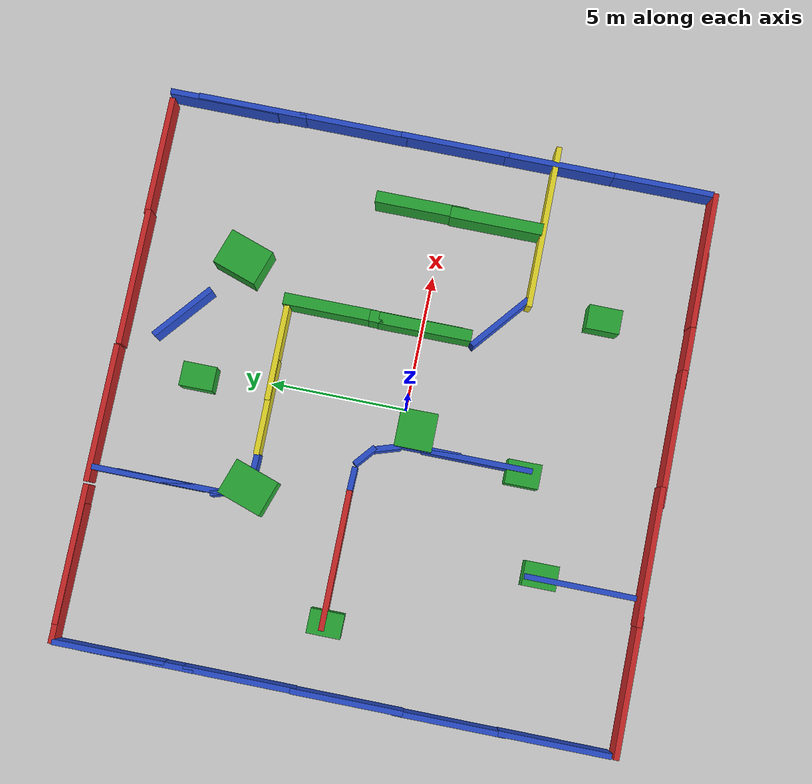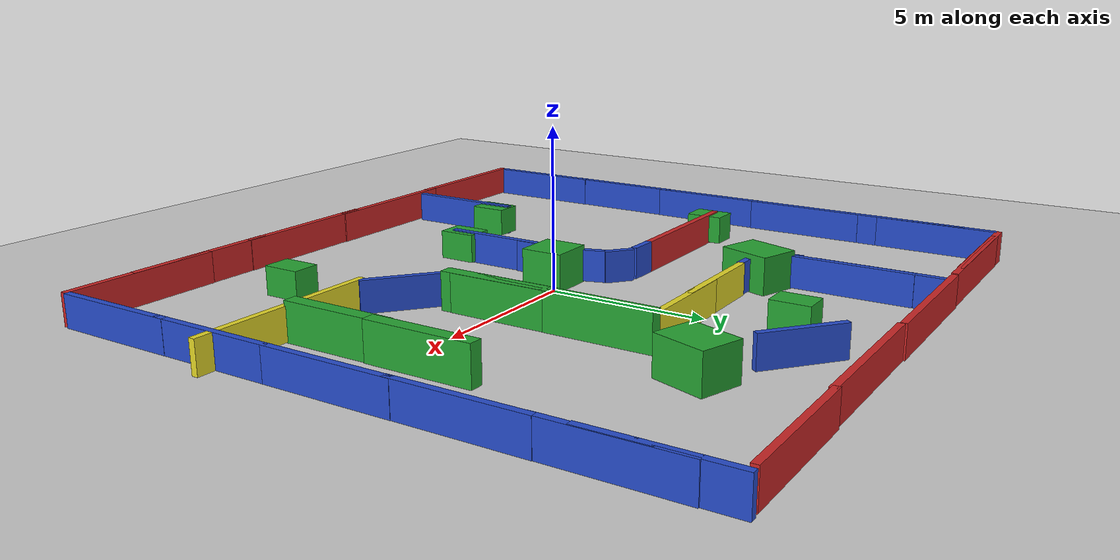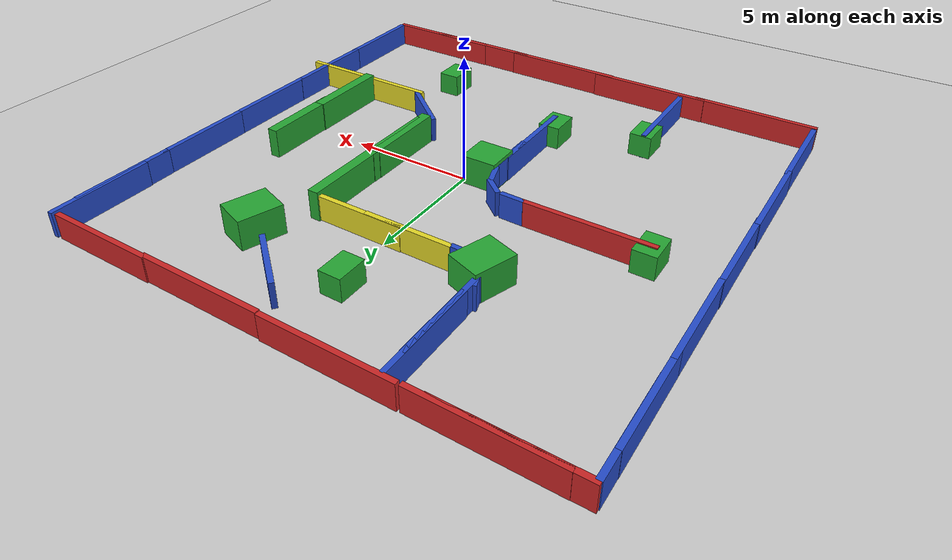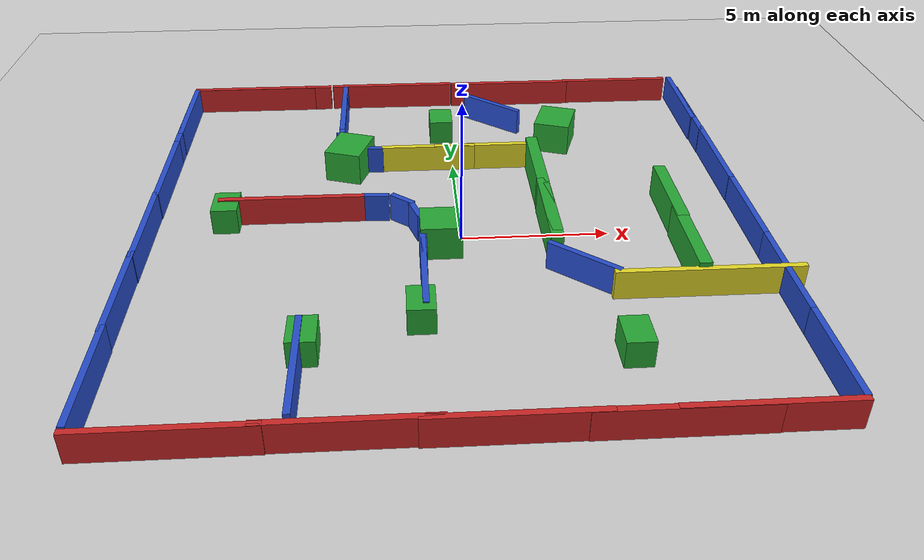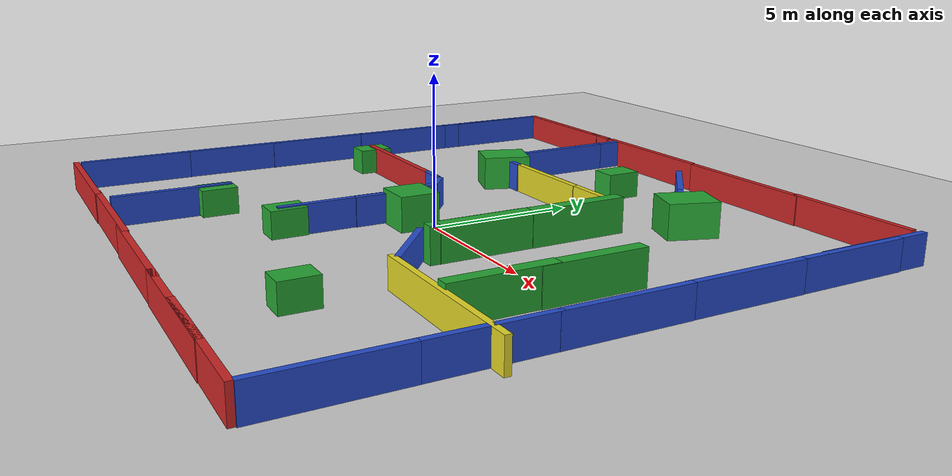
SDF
<sdf version="1.7">
 <world name="maze_world">
  <light name="sun" type="directional">
   <pose>0 0 10 0 -0 0</pose>
   <diffuse>0.8 0.8 0.8 1</diffuse>
   <specular>0.2 0.2 0.2 1</specular>
   <attenuation>
    <range>1000</range>
    <constant>0.9</constant>
    <linear>0.01</linear>
    <quadratic>0.001</quadratic>
   </attenuation>
   <direction>-0.5 0.1 -0.9</direction>
   <spot><inner_angle>0</inner_angle><outer_angle>0</outer_angle><falloff>0</falloff></spot>
  </light>
  <model name="ground_plane">
   <static>1</static>
   <link name="link">
    <collision name="collision">
     <geometry><plane><normal>0 0 1</normal><size>100 100</size></plane></geometry>
     <surface>
      <contact><collide_bitmask>65535</collide_bitmask></contact>
      <friction><ode><mu>100</mu><mu2>50</mu2></ode></friction>
     </surface>
    </collision>
    <visual name="visual">
     <cast_shadows>0</cast_shadows>
     <geometry><plane><normal>0 0 1</normal><size>100 100</size></plane></geometry>
     <material>
      <script><uri>file://media/materials/scripts/gazebo.material</uri><name>Gazebo/Grey</name></script>
     </material>
    </visual>
   </link>
  </model>
  <model name="wall_1">
   <pose>-5.77043 1.40625 0.5 0 -0 0</pose>
   <static>1</static>
   <link name="link">
    <collision name="collision"><geometry><box><size>5 0.2 1</size></box></geometry></collision>
    <visual name="visual">
     <geometry><box><size>5 0.2 1</size></box></geometry>
     <material>
      <script><uri>file://media/materials/scripts/gazebo.material</uri><name>Gazebo/Red</name></script>
     </material>
    </visual>
   </link>
  </model>
  <model name="wall_2">
   <pose>-5.01316 -7.19728 0.5 0 -0 1.5708</pose>
   <static>1</static>
   <link name="link">
    <collision name="collision"><geometry><box><size>4 0.2 1</size></box></geometry></collision>
    <visual name="visual">
     <geometry><box><size>4 0.2 1</size></box></geometry>
     <material>
      <script><uri>file://media/materials/scripts/gazebo.material</uri><name>Gazebo/Blue</name></script>
     </material>
    </visual>
   </link>
  </model>
  <model name="wall_3">
   <pose>7.44421 -3.59451 0.5 0 -0 0</pose>
   <static>1</static>
   <link name="link">
    <collision name="collision"><geometry><box><size>6 0.2 1</size></box></geometry></collision>
    <visual name="visual">
     <geometry><box><size>6 0.2 1</size></box></geometry>
     <material>
      <script><uri>file://media/materials/scripts/gazebo.material</uri><name>Gazebo/Yellow</name></script>
     </material>
    </visual>
   </link>
  </model>
  <gravity>0 0 -9.8</gravity>
  <magnetic_field>6e-06 2.3e-05 -4.2e-05</magnetic_field>
  <atmosphere type="adiabatic"/>
  <physics type="ode">
   <max_step_size>0.001</max_step_size>
   <real_time_factor>1</real_time_factor>
   <real_time_update_rate>1000</real_time_update_rate>
  </physics>
  <scene><ambient>0.4 0.4 0.4 1</ambient><background>0.7 0.7 0.7 1</background><shadows>1</shadows></scene>
  <audio><device>default</device></audio>
  <spherical_coordinates>
   <surface_model>EARTH_WGS84</surface_model>
   <latitude_deg>0</latitude_deg>
   <longitude_deg>0</longitude_deg>
   <elevation>0</elevation>
   <heading_deg>0</heading_deg>
  </spherical_coordinates>
  <model name="wall_1_clone">
   <pose>5.11107 -9.50117 0.5 0 -0 0</pose>
   <static>1</static>
   <link name="link">
    <collision name="collision"><geometry><box><size>5 0.2 1</size></box></geometry></collision>
    <visual name="visual">
     <geometry><box><size>5 0.2 1</size></box></geometry>
     <material>
      <script><uri>file://media/materials/scripts/gazebo.material</uri><name>Gazebo/Red</name></script>
     </material>
    </visual>
   </link>
  </model>
  <model name="wall_1_clone_0">
   <pose>0.768556 -9.48459 0.5 0 -0 0</pose>
   <static>1</static>
   <link name="link">
    <collision name="collision"><geometry><box><size>5 0.2 1</size></box></geometry></collision>
    <visual name="visual">
     <geometry><box><size>5 0.2 1</size></box></geometry>
     <material>
      <script><uri>file://media/materials/scripts/gazebo.material</uri><name>Gazebo/Red</name></script>
     </material>
    </visual>
   </link>
  </model>
  <model name="wall_1_clone_1">
   <pose>-3.48365 -9.44371 0.5 0 -0 0</pose>
   <static>1</static>
   <link name="link">
    <collision name="collision"><geometry><box><size>5 0.2 1</size></box></geometry></collision>
    <visual name="visual">
     <geometry><box><size>5 0.2 1</size></box></geometry>
     <material>
      <script><uri>file://media/materials/scripts/gazebo.material</uri><name>Gazebo/Red</name></script>
     </material>
    </visual>
   </link>
  </model>
  <model name="wall_1_clone_2">
   <pose>-8.09145 -9.46998 0.5 0 -0 0</pose>
   <static>1</static>
   <link name="link">
    <collision name="collision"><geometry><box><size>5 0.2 1</size></box></geometry></collision>
    <visual name="visual">
     <geometry><box><size>5 0.2 1</size></box></geometry>
     <material>
      <script><uri>file://media/materials/scripts/gazebo.material</uri><name>Gazebo/Red</name></script>
     </material>
    </visual>
   </link>
  </model>
  <model name="wall_2_clone">
   <pose>9.79397 -7.39957 0.5 0 -0 1.5708</pose>
   <static>1</static>
   <link name="link">
    <collision name="collision"><geometry><box><size>4 0.2 1</size></box></geometry></collision>
    <visual name="visual">
     <geometry><box><size>4 0.2 1</size></box></geometry>
     <material>
      <script><uri>file://media/materials/scripts/gazebo.material</uri><name>Gazebo/Blue</name></script>
     </material>
    </visual>
   </link>
  </model>
  <model name="wall_2_clone_0">
   <pose>9.78966 -3.73126 0.5 0 -0 1.5708</pose>
   <static>1</static>
   <link name="link">
    <collision name="collision"><geometry><box><size>4 0.2 1</size></box></geometry></collision>
    <visual name="visual">
     <geometry><box><size>4 0.2 1</size></box></geometry>
     <material>
      <script><uri>file://media/materials/scripts/gazebo.material</uri><name>Gazebo/Blue</name></script>
     </material>
    </visual>
   </link>
  </model>
  <model name="wall_2_clone_1">
   <pose>9.79271 0.139401 0.5 0 -0 1.5708</pose>
   <static>1</static>
   <link name="link">
    <collision name="collision"><geometry><box><size>4 0.2 1</size></box></geometry></collision>
    <visual name="visual">
     <geometry><box><size>4 0.2 1</size></box></geometry>
     <material>
      <script><uri>file://media/materials/scripts/gazebo.material</uri><name>Gazebo/Blue</name></script>
     </material>
    </visual>
   </link>
  </model>
  <model name="wall_2_clone_2">
   <pose>9.78271 3.91195 0.5 0 -0 1.5708</pose>
   <static>1</static>
   <link name="link">
    <collision name="collision"><geometry><box><size>4 0.2 1</size></box></geometry></collision>
    <visual name="visual">
     <geometry><box><size>4 0.2 1</size></box></geometry>
     <material>
      <script><uri>file://media/materials/scripts/gazebo.material</uri><name>Gazebo/Blue</name></script>
     </material>
    </visual>
   </link>
  </model>
  <model name="wall_2_clone_3">
   <pose>9.77099 7.66661 0.5 0 -0 1.5708</pose>
   <static>1</static>
   <link name="link">
    <collision name="collision"><geometry><box><size>4 0.2 1</size></box></geometry></collision>
    <visual name="visual">
     <geometry><box><size>4 0.2 1</size></box></geometry>
     <material>
      <script><uri>file://media/materials/scripts/gazebo.material</uri><name>Gazebo/Blue</name></script>
     </material>
    </visual>
   </link>
  </model>
  <model name="wall_2_clone_4">
   <pose>-10.5002 -7.31072 0.5 0 -0 1.5708</pose>
   <static>1</static>
   <link name="link">
    <collision name="collision"><geometry><box><size>4 0.2 1</size></box></geometry></collision>
    <visual name="visual">
     <geometry><box><size>4 0.2 1</size></box></geometry>
     <material>
      <script><uri>file://media/materials/scripts/gazebo.material</uri><name>Gazebo/Blue</name></script>
     </material>
    </visual>
   </link>
  </model>
  <model name="wall_2_clone_5">
   <pose>-10.5182 -3.58939 0.5 0 -0 1.5708</pose>
   <static>1</static>
   <link name="link">
    <collision name="collision"><geometry><box><size>4 0.2 1</size></box></geometry></collision>
    <visual name="visual">
     <geometry><box><size>4 0.2 1</size></box></geometry>
     <material>
      <script><uri>file://media/materials/scripts/gazebo.material</uri><name>Gazebo/Blue</name></script>
     </material>
    </visual>
   </link>
  </model>
  <model name="wall_2_clone_6">
   <pose>-10.4978 0.056702 0.5 0 -0 1.5708</pose>
   <static>1</static>
   <link name="link">
    <collision name="collision"><geometry><box><size>4 0.2 1</size></box></geometry></collision>
    <visual name="visual">
     <geometry><box><size>4 0.2 1</size></box></geometry>
     <material>
      <script><uri>file://media/materials/scripts/gazebo.material</uri><name>Gazebo/Blue</name></script>
     </material>
    </visual>
   </link>
  </model>
  <model name="wall_2_clone_7">
   <pose>-10.4792 3.86023 0.5 0 -0 1.5708</pose>
   <static>1</static>
   <link name="link">
    <collision name="collision"><geometry><box><size>4 0.2 1</size></box></geometry></collision>
    <visual name="visual">
     <geometry><box><size>4 0.2 1</size></box></geometry>
     <material>
      <script><uri>file://media/materials/scripts/gazebo.material</uri><name>Gazebo/Blue</name></script>
     </material>
    </visual>
   </link>
  </model>
  <model name="wall_2_clone_8">
   <pose>-10.4818 7.4759 0.5 0 -0 1.5708</pose>
   <static>1</static>
   <link name="link">
    <collision name="collision"><geometry><box><size>4 0.2 1</size></box></geometry></collision>
    <visual name="visual">
     <geometry><box><size>4 0.2 1</size></box></geometry>
     <material>
      <script><uri>file://media/materials/scripts/gazebo.material</uri><name>Gazebo/Blue</name></script>
     </material>
    </visual>
   </link>
  </model>
  <model name="wall_1_clone_3">
   <pose>-7.37055 10.5675 0.5 0 -0 0</pose>
   <static>1</static>
   <link name="link">
    <collision name="collision"><geometry><box><size>5 0.2 1</size></box></geometry></collision>
    <visual name="visual">
     <geometry><box><size>5 0.2 1</size></box></geometry>
     <material>
      <script><uri>file://media/materials/scripts/gazebo.material</uri><name>Gazebo/Red</name></script>
     </material>
    </visual>
   </link>
  </model>
  <model name="wall_1_clone_4">
   <pose>-2.28423 10.5928 0.5 0 -0 0</pose>
   <static>1</static>
   <link name="link">
    <collision name="collision"><geometry><box><size>5 0.2 1</size></box></geometry></collision>
    <visual name="visual">
     <geometry><box><size>5 0.2 1</size></box></geometry>
     <material>
      <script><uri>file://media/materials/scripts/gazebo.material</uri><name>Gazebo/Red</name></script>
     </material>
    </visual>
   </link>
  </model>
  <model name="wall_1_clone_5">
   <pose>2.74943 10.5508 0.5 0 -0 0</pose>
   <static>1</static>
   <link name="link">
    <collision name="collision"><geometry><box><size>5 0.2 1</size></box></geometry></collision>
    <visual name="visual">
     <geometry><box><size>5 0.2 1</size></box></geometry>
     <material>
      <script><uri>file://media/materials/scripts/gazebo.material</uri><name>Gazebo/Red</name></script>
     </material>
    </visual>
   </link>
  </model>
  <model name="wall_1_clone_6">
   <pose>7.28695 10.5941 0.5 0 -0 0</pose>
   <static>1</static>
   <link name="link">
    <collision name="collision"><geometry><box><size>4.41021 0.2 1</size></box></geometry></collision>
    <visual name="visual">
     <geometry><box><size>4.41021 0.2 1</size></box></geometry>
     <material>
      <script><uri>file://media/materials/scripts/gazebo.material</uri><name>Gazebo/Red</name></script>
     </material>
    </visual>
   </link>
  </model>
  <model name="wall_2_clone_9">
   <pose>-1.35549 -2.80194 0.5 0 -0 1.5708</pose>
   <static>1</static>
   <link name="link">
    <collision name="collision"><geometry><box><size>4 0.2 1</size></box></geometry></collision>
    <visual name="visual">
     <geometry><box><size>4 0.2 1</size></box></geometry>
     <material>
      <script><uri>file://media/materials/scripts/gazebo.material</uri><name>Gazebo/Blue</name></script>
     </material>
    </visual>
   </link>
  </model>
  <model name="wall_2_clone_10">
   <pose>-1.31809 -1.14959 0.5 0 -0 1.5708</pose>
   <static>1</static>
   <link name="link">
    <collision name="collision"><geometry><box><size>2.12273 0.2 1</size></box></geometry></collision>
    <visual name="visual">
     <geometry><box><size>2.12273 0.2 1</size></box></geometry>
     <material>
      <script><uri>file://media/materials/scripts/gazebo.material</uri><name>Gazebo/Blue</name></script>
     </material>
    </visual>
   </link>
  </model>
  <model name="wall_4_clone">
   <pose>2.96576 -0.08782 0.5 0 -0 1.5708</pose>
   <static>1</static>
   <link name="link">
    <collision name="collision"><geometry><box><size>3.37807 0.419515 1.31124</size></box></geometry></collision>
    <visual name="visual">
     <geometry><box><size>3.37807 0.419515 1.31124</size></box></geometry>
     <material>
      <script><uri>file://media/materials/scripts/gazebo.material</uri><name>Gazebo/Green</name></script>
     </material>
    </visual>
   </link>
  </model>
  <model name="wall_4_clone_0">
   <pose>2.99025 3.3928 0.5 0 -0 1.5708</pose>
   <static>1</static>
   <link name="link">
    <collision name="collision"><geometry><box><size>3.37807 0.419515 1.31124</size></box></geometry></collision>
    <visual name="visual">
     <geometry><box><size>3.37807 0.419515 1.31124</size></box></geometry>
     <material>
      <script><uri>file://media/materials/scripts/gazebo.material</uri><name>Gazebo/Green</name></script>
     </material>
    </visual>
   </link>
  </model>
  <model name="wall_4_clone_1">
   <pose>7.26922 -1.86125 0.5 0 -0 1.5708</pose>
   <static>1</static>
   <link name="link">
    <collision name="collision"><geometry><box><size>3.37807 0.419515 1.31124</size></box></geometry></collision>
    <visual name="visual">
     <geometry><box><size>3.37807 0.419515 1.31124</size></box></geometry>
     <material>
      <script><uri>file://media/materials/scripts/gazebo.material</uri><name>Gazebo/Green</name></script>
     </material>
    </visual>
   </link>
  </model>
  <model name="wall_4_clone_2">
   <pose>7.30134 0.892423 0.5 0 -0 1.5708</pose>
   <static>1</static>
   <link name="link">
    <collision name="collision"><geometry><box><size>3.37807 0.419515 1.31124</size></box></geometry></collision>
    <visual name="visual">
     <geometry><box><size>3.37807 0.419515 1.31124</size></box></geometry>
     <material>
      <script><uri>file://media/materials/scripts/gazebo.material</uri><name>Gazebo/Green</name></script>
     </material>
    </visual>
   </link>
  </model>
  <model name="wall_3_clone_clone">
   <pose>1.04986 4.92909 0.5 0 -0 0</pose>
   <static>1</static>
   <link name="link">
    <collision name="collision"><geometry><box><size>3.49399 0.2 1</size></box></geometry></collision>
    <visual name="visual">
     <geometry><box><size>3.49399 0.2 1</size></box></geometry>
     <material>
      <script><uri>file://media/materials/scripts/gazebo.material</uri><name>Gazebo/Yellow</name></script>
     </material>
    </visual>
   </link>
  </model>
  <model name="wall_3_clone_clone_0">
   <pose>-0.93621 4.90639 0.5 0 -0 0</pose>
   <static>1</static>
   <link name="link">
    <collision name="collision"><geometry><box><size>3.49399 0.2 1</size></box></geometry></collision>
    <visual name="visual">
     <geometry><box><size>3.49399 0.2 1</size></box></geometry>
     <material>
      <script><uri>file://media/materials/scripts/gazebo.material</uri><name>Gazebo/Yellow</name></script>
     </material>
    </visual>
   </link>
  </model>
  <model name="wall_2_clone_11">
   <pose>-4.2195 7.62366 0.5 0 -0 1.5708</pose>
   <static>1</static>
   <link name="link">
    <collision name="collision"><geometry><box><size>4 0.2 1</size></box></geometry></collision>
    <visual name="visual">
     <geometry><box><size>4 0.2 1</size></box></geometry>
     <material>
      <script><uri>file://media/materials/scripts/gazebo.material</uri><name>Gazebo/Blue</name></script>
     </material>
    </visual>
   </link>
  </model>
  <model name="wall_2_clone_12">
   <pose>-4.23348 8.52537 0.5 0 -0 1.5708</pose>
   <static>1</static>
   <link name="link">
    <collision name="collision"><geometry><box><size>4 0.2 1</size></box></geometry></collision>
    <visual name="visual">
     <geometry><box><size>4 0.2 1</size></box></geometry>
     <material>
      <script><uri>file://media/materials/scripts/gazebo.material</uri><name>Gazebo/Blue</name></script>
     </material>
    </visual>
   </link>
  </model>
  <model name="wall_1_clone_clone">
   <pose>7.35086 -9.4818 0.5 0 -0 0</pose>
   <static>1</static>
   <link name="link">
    <collision name="collision"><geometry><box><size>5 0.2 1</size></box></geometry></collision>
    <visual name="visual">
     <geometry><box><size>5 0.2 1</size></box></geometry>
     <material>
      <script><uri>file://media/materials/scripts/gazebo.material</uri><name>Gazebo/Red</name></script>
     </material>
    </visual>
   </link>
  </model>
  <model name="wall_2_clone_3_clone">
   <pose>9.73574 8.72083 0.5 0 -0 1.5708</pose>
   <static>1</static>
   <link name="link">
    <collision name="collision"><geometry><box><size>4 0.2 1</size></box></geometry></collision>
    <visual name="visual">
     <geometry><box><size>4 0.2 1</size></box></geometry>
     <material>
      <script><uri>file://media/materials/scripts/gazebo.material</uri><name>Gazebo/Blue</name></script>
     </material>
    </visual>
   </link>
  </model>
  <model name="wall_2_clone_3_clone_0">
   <pose>-10.4748 8.53235 0.5 0 -0 1.5708</pose>
   <static>1</static>
   <link name="link">
    <collision name="collision"><geometry><box><size>4 0.2 1</size></box></geometry></collision>
    <visual name="visual">
     <geometry><box><size>4 0.2 1</size></box></geometry>
     <material>
      <script><uri>file://media/materials/scripts/gazebo.material</uri><name>Gazebo/Blue</name></script>
     </material>
    </visual>
   </link>
  </model>
  <model name="wall_1_clone_3_clone">
   <pose>-8.05017 10.5546 0.5 0 -0 0</pose>
   <static>1</static>
   <link name="link">
    <collision name="collision"><geometry><box><size>5 0.2 1</size></box></geometry></collision>
    <visual name="visual">
     <geometry><box><size>5 0.2 1</size></box></geometry>
     <material>
      <script><uri>file://media/materials/scripts/gazebo.material</uri><name>Gazebo/Red</name></script>
     </material>
    </visual>
   </link>
  </model>
  <model name="wall_4_clone_clone">
   <pose>2.97902 0.255715 0.5 0 -0 1.5708</pose>
   <static>1</static>
   <link name="link">
    <collision name="collision"><geometry><box><size>3.37807 0.419515 1.31124</size></box></geometry></collision>
    <visual name="visual">
     <geometry><box><size>3.37807 0.419515 1.31124</size></box></geometry>
     <material>
      <script><uri>file://media/materials/scripts/gazebo.material</uri><name>Gazebo/Green</name></script>
     </material>
    </visual>
   </link>
  </model>
  <model name="wall_2_clone_10_clone_clone">
   <pose>-1.9645 1.11992 0.5 0 -0 2.44935</pose>
   <static>1</static>
   <link name="link">
    <collision name="collision"><geometry><box><size>0.946012 0.2 1</size></box></geometry></collision>
    <visual name="visual">
     <geometry><box><size>0.946012 0.2 1</size></box></geometry>
     <material>
      <script><uri>file://media/materials/scripts/gazebo.material</uri><name>Gazebo/Blue</name></script>
     </material>
    </visual>
   </link>
  </model>
  <model name="wall_2_clone_10_clone_clone_clone_1_clone">
   <pose>-4.20036 5.76429 0.5 0 -0 1.87936</pose>
   <static>1</static>
   <link name="link">
    <collision name="collision"><geometry><box><size>0.946012 0.2 1</size></box></geometry></collision>
    <visual name="visual">
     <geometry><box><size>0.946012 0.2 1</size></box></geometry>
     <material>
      <script><uri>file://media/materials/scripts/gazebo.material</uri><name>Gazebo/Blue</name></script>
     </material>
    </visual>
   </link>
  </model>
  <model name="wall_2_clone_10_clone_clone_clone_0_clone_0">
   <pose>-3.83429 5.22295 0.5 0 -0 2.44935</pose>
   <static>1</static>
   <link name="link">
    <collision name="collision"><geometry><box><size>0.946012 0.2 1</size></box></geometry></collision>
    <visual name="visual">
     <geometry><box><size>0.946012 0.2 1</size></box></geometry>
     <material>
      <script><uri>file://media/materials/scripts/gazebo.material</uri><name>Gazebo/Blue</name></script>
     </material>
    </visual>
   </link>
  </model>
  <model name="wall_2_clone_10_clone_clone_clone_0_clone_clone">
   <pose>-3.11574 4.88323 0.5 0 -0 3.11163</pose>
   <static>1</static>
   <link name="link">
    <collision name="collision"><geometry><box><size>0.946012 0.2 1</size></box></geometry></collision>
    <visual name="visual">
     <geometry><box><size>0.946012 0.2 1</size></box></geometry>
     <material>
      <script><uri>file://media/materials/scripts/gazebo.material</uri><name>Gazebo/Blue</name></script>
     </material>
    </visual>
   </link>
  </model>
  <model name="wall_2_clone_10_clone_clone_clone_0_clone_clone_clone">
   <pose>-2.89618 1.39703 0.5 0 -0 3.11163</pose>
   <static>1</static>
   <link name="link">
    <collision name="collision"><geometry><box><size>0.946012 0.2 1</size></box></geometry></collision>
    <visual name="visual">
     <geometry><box><size>0.946012 0.2 1</size></box></geometry>
     <material>
      <script><uri>file://media/materials/scripts/gazebo.material</uri><name>Gazebo/Blue</name></script>
     </material>
    </visual>
   </link>
  </model>
  <model name="wall_2_clone_10_clone_clone_clone_1_clone_clone">
   <pose>-1.53344 0.388035 0.5 0 -0 1.87936</pose>
   <static>1</static>
   <link name="link">
    <collision name="collision"><geometry><box><size>0.946012 0.2 1</size></box></geometry></collision>
    <visual name="visual">
     <geometry><box><size>0.946012 0.2 1</size></box></geometry>
     <material>
      <script><uri>file://media/materials/scripts/gazebo.material</uri><name>Gazebo/Blue</name></script>
     </material>
    </visual>
   </link>
  </model>
  <model name="wall_2_clone_10_clone_clone_clone">
   <pose>3.67796 -2.67171 0.5 0 -0 2.44935</pose>
   <static>1</static>
   <link name="link">
    <collision name="collision"><geometry><box><size>2.62529 0.2 1</size></box></geometry></collision>
    <visual name="visual">
     <geometry><box><size>2.62529 0.2 1</size></box></geometry>
     <material>
      <script><uri>file://media/materials/scripts/gazebo.material</uri><name>Gazebo/Blue</name></script>
     </material>
    </visual>
   </link>
  </model>
  <model name="wall_4_clone_1_clone">
   <pose>-3.87985 4.92853 0.5 0 -0 2.81525</pose>
   <static>1</static>
   <link name="link">
    <collision name="collision"><geometry><box><size>1.34986 1.69065 1.31124</size></box></geometry></collision>
    <visual name="visual">
     <geometry><box><size>1.34986 1.69065 1.31124</size></box></geometry>
     <material>
      <script><uri>file://media/materials/scripts/gazebo.material</uri><name>Gazebo/Green</name></script>
     </material>
    </visual>
   </link>
  </model>
  <model name="wall_4_clone_1_clone_clone">
   <pose>-0.722484 -0.486884 0.5 0 -0 1.5708</pose>
   <static>1</static>
   <link name="link">
    <collision name="collision"><geometry><box><size>1.34986 1.38658 1.31124</size></box></geometry></collision>
    <visual name="visual">
     <geometry><box><size>1.34986 1.38658 1.31124</size></box></geometry>
     <material>
      <script><uri>file://media/materials/scripts/gazebo.material</uri><name>Gazebo/Green</name></script>
     </material>
    </visual>
   </link>
  </model>
  <model name="wall_4_clone_1_clone_clone_clone">
   <pose>-4.90086 -5.75924 0.5 0 -0 1.5708</pose>
   <static>1</static>
   <link name="link">
    <collision name="collision"><geometry><box><size>1.21623 0.8819 0.916329</size></box></geometry></collision>
    <visual name="visual">
     <geometry><box><size>1.21623 0.8819 0.916329</size></box></geometry>
     <material>
      <script><uri>file://media/materials/scripts/gazebo.material</uri><name>Gazebo/Green</name></script>
     </material>
    </visual>
   </link>
  </model>
  <model name="wall_4_clone_1_clone_clone_clone_clone">
   <pose>-1.5019 -4.50915 0.5 0 -0 1.5708</pose>
   <static>1</static>
   <link name="link">
    <collision name="collision"><geometry><box><size>1.21623 0.8819 0.916331</size></box></geometry></collision>
    <visual name="visual">
     <geometry><box><size>1.21623 0.8819 0.916331</size></box></geometry>
     <material>
      <script><uri>file://media/materials/scripts/gazebo.material</uri><name>Gazebo/Green</name></script>
     </material>
    </visual>
   </link>
  </model>
  <model name="wall_4_clone_1_clone_clone_clone_clone_0">
   <pose>-8.00032 1.30841 0.5 0 -0 1.5708</pose>
   <static>1</static>
   <link name="link">
    <collision name="collision"><geometry><box><size>1.21623 0.8819 0.916331</size></box></geometry></collision>
    <visual name="visual">
     <geometry><box><size>1.21623 0.8819 0.916331</size></box></geometry>
     <material>
      <script><uri>file://media/materials/scripts/gazebo.material</uri><name>Gazebo/Green</name></script>
     </material>
    </visual>
   </link>
  </model>
  <model name="wall_4_clone_1_clone_clone_0">
   <pose>4.17256 6.81372 0.5 0 -0 2.81525</pose>
   <static>1</static>
   <link name="link">
    <collision name="collision"><geometry><box><size>1.34986 1.69065 1.31124</size></box></geometry></collision>
    <visual name="visual">
     <geometry><box><size>1.34986 1.69065 1.31124</size></box></geometry>
     <material>
      <script><uri>file://media/materials/scripts/gazebo.material</uri><name>Gazebo/Green</name></script>
     </material>
    </visual>
   </link>
  </model>
  <model name="wall_4_clone_1_clone_clone_clone_clone_clone">
   <pose>-0.342131 7.52504 0.5 0 -0 1.5708</pose>
   <static>1</static>
   <link name="link">
    <collision name="collision"><geometry><box><size>1.21623 0.8819 0.916331</size></box></geometry></collision>
    <visual name="visual">
     <geometry><box><size>1.21623 0.8819 0.916331</size></box></geometry>
     <material>
      <script><uri>file://media/materials/scripts/gazebo.material</uri><name>Gazebo/Green</name></script>
     </material>
    </visual>
   </link>
  </model>
  <model name="wall_2_clone_10_clone_clone_clone_clone">
   <pose>1.8203 8.56296 0.5 0 -0 2.44935</pose>
   <static>1</static>
   <link name="link">
    <collision name="collision"><geometry><box><size>2.62529 0.2 1</size></box></geometry></collision>
    <visual name="visual">
     <geometry><box><size>2.62529 0.2 1</size></box></geometry>
     <material>
      <script><uri>file://media/materials/scripts/gazebo.material</uri><name>Gazebo/Blue</name></script>
     </material>
    </visual>
   </link>
  </model>
  <model name="wall_4_clone_1_clone_clone_clone_clone_clone_clone">
   <pose>4.52253 -6.32831 0.5 0 -0 1.5708</pose>
   <static>1</static>
   <link name="link">
    <collision name="collision"><geometry><box><size>1.21623 0.8819 0.916331</size></box></geometry></collision>
    <visual name="visual">
     <geometry><box><size>1.21623 0.8819 0.916331</size></box></geometry>
     <material>
      <script><uri>file://media/materials/scripts/gazebo.material</uri><name>Gazebo/Green</name></script>
     </material>
    </visual>
   </link>
  </model>
 </world>
</sdf>
